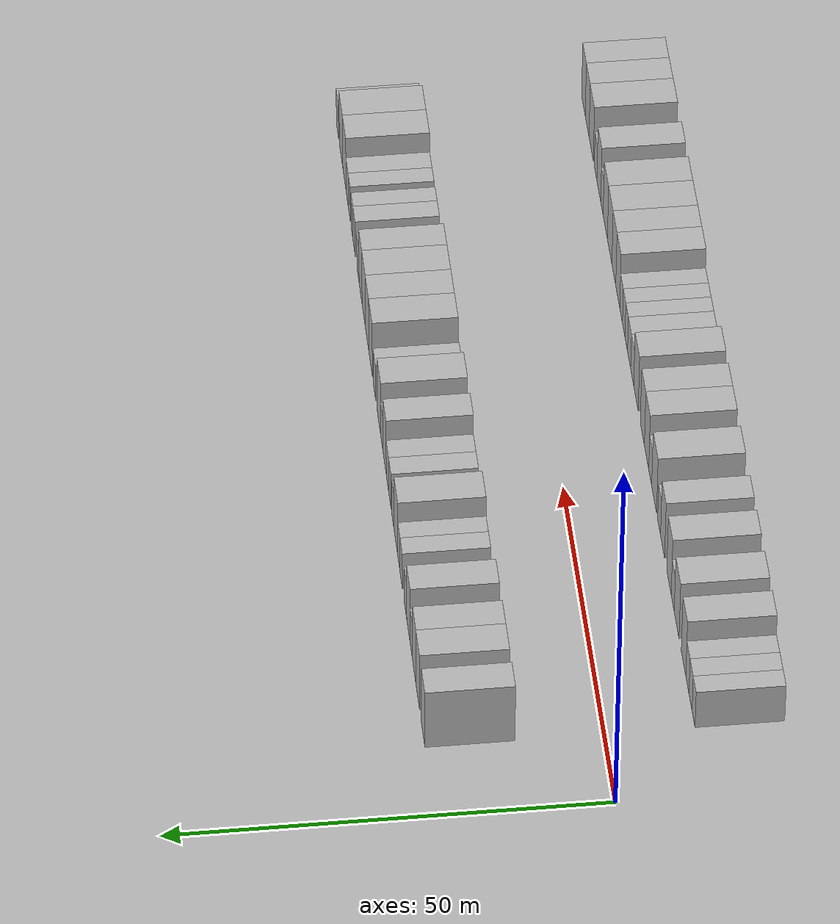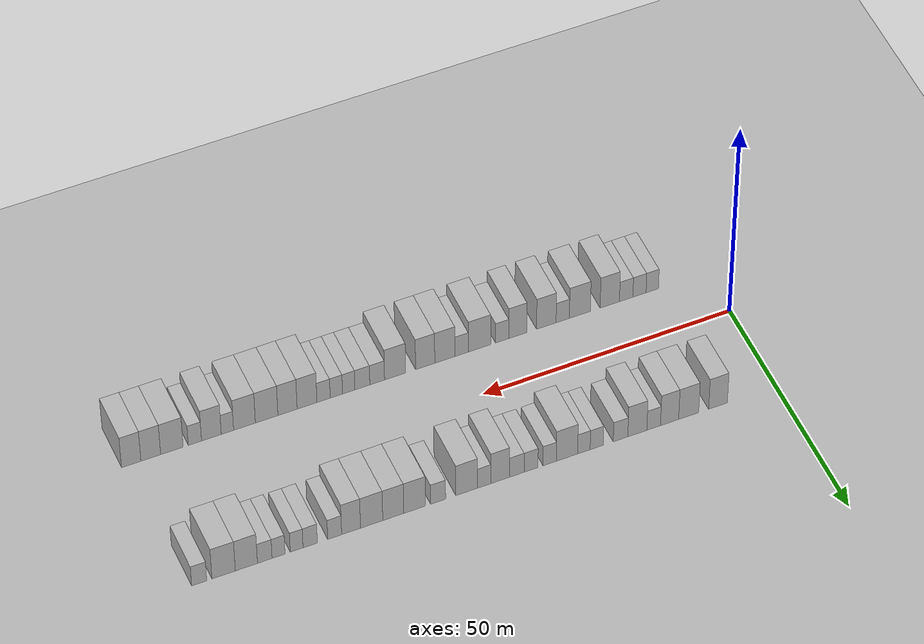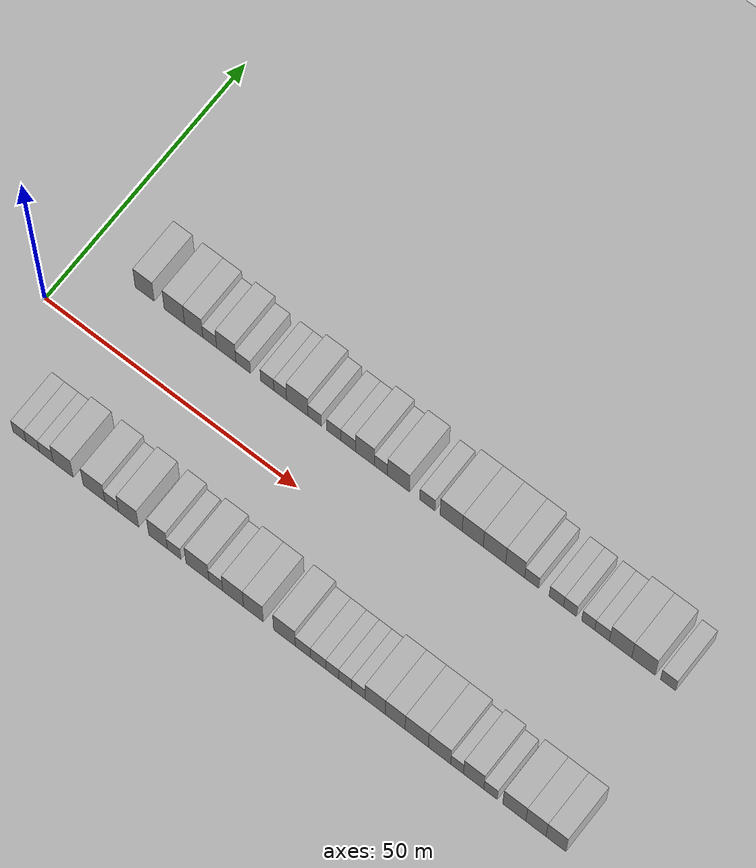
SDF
<sdf version="1.6">
 <world name="default">
  <include><name>ground_plane_1</name><uri>model://HANNAS_ground_plane</uri></include>
  <include>
   <name>ground_plane_2</name>
   <uri>model://HANNAS_ground_plane</uri>
   <pose>100 0 0  0 0 0</pose>
  </include>
  <model name="building_1">
   <static>1</static>
   <pose>11.8929 15.0000 0 0.000000 0.000000 1.570796</pose>
   <link name="link">
    <pose>0 0 4.50 0 0 0</pose>
    <collision name="collision"><geometry><box><size>10.0000 3.7858 9.0000</size></box></geometry></collision>
    <visual name="visual">
     <cast_shadows>0</cast_shadows>
     <geometry><box><size>10.0000 3.7858 9.0000</size></box></geometry>
     <material>
      <script>
       <uri>model://HANNAS_wall/materials/scripts</uri>
       <uri>model://HANNAS_wall/materials/textures</uri>
       <name>vrc/HANNAS_wall</name>
      </script>
     </material>
    </visual>
   </link>
  </model>
  <model name="building_2">
   <static>1</static>
   <pose>17.8049 15.0000 0 0.000000 0.000000 1.570796</pose>
   <link name="link">
    <pose>0 0 4.50 0 0 0</pose>
    <collision name="collision"><geometry><box><size>10.0000 4.0382 9.0000</size></box></geometry></collision>
    <visual name="visual">
     <cast_shadows>0</cast_shadows>
     <geometry><box><size>10.0000 4.0382 9.0000</size></box></geometry>
     <material>
      <script>
       <uri>model://HANNAS_wall/materials/scripts</uri>
       <uri>model://HANNAS_wall/materials/textures</uri>
       <name>vrc/HANNAS_wall</name>
      </script>
     </material>
    </visual>
   </link>
  </model>
  <model name="building_3">
   <static>1</static>
   <pose>21.6515 15.0000 0 0.000000 0.000000 1.570796</pose>
   <link name="link">
    <pose>0 0 4.50 0 0 0</pose>
    <collision name="collision"><geometry><box><size>10.0000 3.6549 9.0000</size></box></geometry></collision>
    <visual name="visual">
     <cast_shadows>0</cast_shadows>
     <geometry><box><size>10.0000 3.6549 9.0000</size></box></geometry>
     <material>
      <script>
       <uri>model://HANNAS_wall/materials/scripts</uri>
       <uri>model://HANNAS_wall/materials/textures</uri>
       <name>vrc/HANNAS_wall</name>
      </script>
     </material>
    </visual>
   </link>
  </model>
  <model name="building_4">
   <static>1</static>
   <pose>24.8479 15.0000 0 0.000000 0.000000 1.570796</pose>
   <link name="link">
    <pose>0 0 3.00 0 0 0</pose>
    <collision name="collision"><geometry><box><size>10.0000 2.7379 6.0000</size></box></geometry></collision>
    <visual name="visual">
     <cast_shadows>0</cast_shadows>
     <geometry><box><size>10.0000 2.7379 6.0000</size></box></geometry>
     <material>
      <script>
       <uri>model://HANNAS_wall/materials/scripts</uri>
       <uri>model://HANNAS_wall/materials/textures</uri>
       <name>vrc/HANNAS_wall</name>
      </script>
     </material>
    </visual>
   </link>
  </model>
  <model name="building_5">
   <static>1</static>
   <pose>28.1217 15.0000 0 0.000000 0.000000 1.570796</pose>
   <link name="link">
    <pose>0 0 4.50 0 0 0</pose>
    <collision name="collision"><geometry><box><size>10.0000 3.8098 9.0000</size></box></geometry></collision>
    <visual name="visual">
     <cast_shadows>0</cast_shadows>
     <geometry><box><size>10.0000 3.8098 9.0000</size></box></geometry>
     <material>
      <script>
       <uri>model://HANNAS_wall/materials/scripts</uri>
       <uri>model://HANNAS_wall/materials/textures</uri>
       <name>vrc/HANNAS_wall</name>
      </script>
     </material>
    </visual>
   </link>
  </model>
  <model name="building_6">
   <static>1</static>
   <pose>31.4849 15.0000 0 0.000000 0.000000 1.570796</pose>
   <link name="link">
    <pose>0 0 3.00 0 0 0</pose>
    <collision name="collision"><geometry><box><size>10.0000 2.9166 6.0000</size></box></geometry></collision>
    <visual name="visual">
     <cast_shadows>0</cast_shadows>
     <geometry><box><size>10.0000 2.9166 6.0000</size></box></geometry>
     <material>
      <script>
       <uri>model://HANNAS_wall/materials/scripts</uri>
       <uri>model://HANNAS_wall/materials/textures</uri>
       <name>vrc/HANNAS_wall</name>
      </script>
     </material>
    </visual>
   </link>
  </model>
  <model name="building_7">
   <static>1</static>
   <pose>36.2474 15.0000 0 0.000000 0.000000 1.570796</pose>
   <link name="link">
    <pose>0 0 3.00 0 0 0</pose>
    <collision name="collision"><geometry><box><size>10.0000 2.6083 6.0000</size></box></geometry></collision>
    <visual name="visual">
     <cast_shadows>0</cast_shadows>
     <geometry><box><size>10.0000 2.6083 6.0000</size></box></geometry>
     <material>
      <script>
       <uri>model://HANNAS_wall/materials/scripts</uri>
       <uri>model://HANNAS_wall/materials/textures</uri>
       <name>vrc/HANNAS_wall</name>
      </script>
     </material>
    </visual>
   </link>
  </model>
  <model name="building_8">
   <static>1</static>
   <pose>38.7990 15.0000 0 0.000000 0.000000 1.570796</pose>
   <link name="link">
    <pose>0 0 3.00 0 0 0</pose>
    <collision name="collision"><geometry><box><size>10.0000 2.4950 6.0000</size></box></geometry></collision>
    <visual name="visual">
     <cast_shadows>0</cast_shadows>
     <geometry><box><size>10.0000 2.4950 6.0000</size></box></geometry>
     <material>
      <script>
       <uri>model://HANNAS_wall/materials/scripts</uri>
       <uri>model://HANNAS_wall/materials/textures</uri>
       <name>vrc/HANNAS_wall</name>
      </script>
     </material>
    </visual>
   </link>
  </model>
  <model name="building_9">
   <static>1</static>
   <pose>42.1642 15.0000 0 0.000000 0.000000 1.570796</pose>
   <link name="link">
    <pose>0 0 4.50 0 0 0</pose>
    <collision name="collision"><geometry><box><size>10.0000 4.2353 9.0000</size></box></geometry></collision>
    <visual name="visual">
     <cast_shadows>0</cast_shadows>
     <geometry><box><size>10.0000 4.2353 9.0000</size></box></geometry>
     <material>
      <script>
       <uri>model://HANNAS_wall/materials/scripts</uri>
       <uri>model://HANNAS_wall/materials/textures</uri>
       <name>vrc/HANNAS_wall</name>
      </script>
     </material>
    </visual>
   </link>
  </model>
  <model name="building_10">
   <static>1</static>
   <pose>45.5942 15.0000 0 0.000000 0.000000 1.570796</pose>
   <link name="link">
    <pose>0 0 3.00 0 0 0</pose>
    <collision name="collision"><geometry><box><size>10.0000 2.6246 6.0000</size></box></geometry></collision>
    <visual name="visual">
     <cast_shadows>0</cast_shadows>
     <geometry><box><size>10.0000 2.6246 6.0000</size></box></geometry>
     <material>
      <script>
       <uri>model://HANNAS_wall/materials/scripts</uri>
       <uri>model://HANNAS_wall/materials/textures</uri>
       <name>vrc/HANNAS_wall</name>
      </script>
     </material>
    </visual>
   </link>
  </model>
  <model name="building_11">
   <static>1</static>
   <pose>49.2856 15.0000 0 0.000000 0.000000 1.570796</pose>
   <link name="link">
    <pose>0 0 3.00 0 0 0</pose>
    <collision name="collision"><geometry><box><size>10.0000 2.7582 6.0000</size></box></geometry></collision>
    <visual name="visual">
     <cast_shadows>0</cast_shadows>
     <geometry><box><size>10.0000 2.7582 6.0000</size></box></geometry>
     <material>
      <script>
       <uri>model://HANNAS_wall/materials/scripts</uri>
       <uri>model://HANNAS_wall/materials/textures</uri>
       <name>vrc/HANNAS_wall</name>
      </script>
     </material>
    </visual>
   </link>
  </model>
  <model name="building_12">
   <static>1</static>
   <pose>52.1100 15.0000 0 0.000000 0.000000 1.570796</pose>
   <link name="link">
    <pose>0 0 3.00 0 0 0</pose>
    <collision name="collision"><geometry><box><size>10.0000 2.8906 6.0000</size></box></geometry></collision>
    <visual name="visual">
     <cast_shadows>0</cast_shadows>
     <geometry><box><size>10.0000 2.8906 6.0000</size></box></geometry>
     <material>
      <script>
       <uri>model://HANNAS_wall/materials/scripts</uri>
       <uri>model://HANNAS_wall/materials/textures</uri>
       <name>vrc/HANNAS_wall</name>
      </script>
     </material>
    </visual>
   </link>
  </model>
  <model name="building_13">
   <static>1</static>
   <pose>55.3930 15.0000 0 0.000000 0.000000 1.570796</pose>
   <link name="link">
    <pose>0 0 4.50 0 0 0</pose>
    <collision name="collision"><geometry><box><size>10.0000 3.6754 9.0000</size></box></geometry></collision>
    <visual name="visual">
     <cast_shadows>0</cast_shadows>
     <geometry><box><size>10.0000 3.6754 9.0000</size></box></geometry>
     <material>
      <script>
       <uri>model://HANNAS_wall/materials/scripts</uri>
       <uri>model://HANNAS_wall/materials/textures</uri>
       <name>vrc/HANNAS_wall</name>
      </script>
     </material>
    </visual>
   </link>
  </model>
  <model name="building_14">
   <static>1</static>
   <pose>58.5261 15.0000 0 0.000000 0.000000 1.570796</pose>
   <link name="link">
    <pose>0 0 3.00 0 0 0</pose>
    <collision name="collision"><geometry><box><size>10.0000 2.5907 6.0000</size></box></geometry></collision>
    <visual name="visual">
     <cast_shadows>0</cast_shadows>
     <geometry><box><size>10.0000 2.5907 6.0000</size></box></geometry>
     <material>
      <script>
       <uri>model://HANNAS_wall/materials/scripts</uri>
       <uri>model://HANNAS_wall/materials/textures</uri>
       <name>vrc/HANNAS_wall</name>
      </script>
     </material>
    </visual>
   </link>
  </model>
  <model name="building_15">
   <static>1</static>
   <pose>61.9586 15.0000 0 0.000000 0.000000 1.570796</pose>
   <link name="link">
    <pose>0 0 4.50 0 0 0</pose>
    <collision name="collision"><geometry><box><size>10.0000 4.2743 9.0000</size></box></geometry></collision>
    <visual name="visual">
     <cast_shadows>0</cast_shadows>
     <geometry><box><size>10.0000 4.2743 9.0000</size></box></geometry>
     <material>
      <script>
       <uri>model://HANNAS_wall/materials/scripts</uri>
       <uri>model://HANNAS_wall/materials/textures</uri>
       <name>vrc/HANNAS_wall</name>
      </script>
     </material>
    </visual>
   </link>
  </model>
  <model name="building_16">
   <static>1</static>
   <pose>67.5667 15.0000 0 0.000000 0.000000 1.570796</pose>
   <link name="link">
    <pose>0 0 3.00 0 0 0</pose>
    <collision name="collision"><geometry><box><size>10.0000 2.9419 6.0000</size></box></geometry></collision>
    <visual name="visual">
     <cast_shadows>0</cast_shadows>
     <geometry><box><size>10.0000 2.9419 6.0000</size></box></geometry>
     <material>
      <script>
       <uri>model://HANNAS_wall/materials/scripts</uri>
       <uri>model://HANNAS_wall/materials/textures</uri>
       <name>vrc/HANNAS_wall</name>
      </script>
     </material>
    </visual>
   </link>
  </model>
  <model name="building_17">
   <static>1</static>
   <pose>72.1605 15.0000 0 0.000000 0.000000 1.570796</pose>
   <link name="link">
    <pose>0 0 4.50 0 0 0</pose>
    <collision name="collision"><geometry><box><size>10.0000 4.2457 9.0000</size></box></geometry></collision>
    <visual name="visual">
     <cast_shadows>0</cast_shadows>
     <geometry><box><size>10.0000 4.2457 9.0000</size></box></geometry>
     <material>
      <script>
       <uri>model://HANNAS_wall/materials/scripts</uri>
       <uri>model://HANNAS_wall/materials/textures</uri>
       <name>vrc/HANNAS_wall</name>
      </script>
     </material>
    </visual>
   </link>
  </model>
  <model name="building_18">
   <static>1</static>
   <pose>76.3221 15.0000 0 0.000000 0.000000 1.570796</pose>
   <link name="link">
    <pose>0 0 4.50 0 0 0</pose>
    <collision name="collision"><geometry><box><size>10.0000 4.0774 9.0000</size></box></geometry></collision>
    <visual name="visual">
     <cast_shadows>0</cast_shadows>
     <geometry><box><size>10.0000 4.0774 9.0000</size></box></geometry>
     <material>
      <script>
       <uri>model://HANNAS_wall/materials/scripts</uri>
       <uri>model://HANNAS_wall/materials/textures</uri>
       <name>vrc/HANNAS_wall</name>
      </script>
     </material>
    </visual>
   </link>
  </model>
  <model name="building_19">
   <static>1</static>
   <pose>80.5234 15.0000 0 0.000000 0.000000 1.570796</pose>
   <link name="link">
    <pose>0 0 4.50 0 0 0</pose>
    <collision name="collision"><geometry><box><size>10.0000 4.3253 9.0000</size></box></geometry></collision>
    <visual name="visual">
     <cast_shadows>0</cast_shadows>
     <geometry><box><size>10.0000 4.3253 9.0000</size></box></geometry>
     <material>
      <script>
       <uri>model://HANNAS_wall/materials/scripts</uri>
       <uri>model://HANNAS_wall/materials/textures</uri>
       <name>vrc/HANNAS_wall</name>
      </script>
     </material>
    </visual>
   </link>
  </model>
  <model name="building_20">
   <static>1</static>
   <pose>84.5161 15.0000 0 0.000000 0.000000 1.570796</pose>
   <link name="link">
    <pose>0 0 4.50 0 0 0</pose>
    <collision name="collision"><geometry><box><size>10.0000 3.6600 9.0000</size></box></geometry></collision>
    <visual name="visual">
     <cast_shadows>0</cast_shadows>
     <geometry><box><size>10.0000 3.6600 9.0000</size></box></geometry>
     <material>
      <script>
       <uri>model://HANNAS_wall/materials/scripts</uri>
       <uri>model://HANNAS_wall/materials/textures</uri>
       <name>vrc/HANNAS_wall</name>
      </script>
     </material>
    </visual>
   </link>
  </model>
  <model name="building_21">
   <static>1</static>
   <pose>87.6903 15.0000 0 0.000000 0.000000 1.570796</pose>
   <link name="link">
    <pose>0 0 3.00 0 0 0</pose>
    <collision name="collision"><geometry><box><size>10.0000 2.6885 6.0000</size></box></geometry></collision>
    <visual name="visual">
     <cast_shadows>0</cast_shadows>
     <geometry><box><size>10.0000 2.6885 6.0000</size></box></geometry>
     <material>
      <script>
       <uri>model://HANNAS_wall/materials/scripts</uri>
       <uri>model://HANNAS_wall/materials/textures</uri>
       <name>vrc/HANNAS_wall</name>
      </script>
     </material>
    </visual>
   </link>
  </model>
  <model name="building_22">
   <static>1</static>
   <pose>92.4171 15.0000 0 0.000000 0.000000 1.570796</pose>
   <link name="link">
    <pose>0 0 3.00 0 0 0</pose>
    <collision name="collision"><geometry><box><size>10.0000 2.7649 6.0000</size></box></geometry></collision>
    <visual name="visual">
     <cast_shadows>0</cast_shadows>
     <geometry><box><size>10.0000 2.7649 6.0000</size></box></geometry>
     <material>
      <script>
       <uri>model://HANNAS_wall/materials/scripts</uri>
       <uri>model://HANNAS_wall/materials/textures</uri>
       <name>vrc/HANNAS_wall</name>
      </script>
     </material>
    </visual>
   </link>
  </model>
  <model name="building_23">
   <static>1</static>
   <pose>95.0302 15.0000 0 0.000000 0.000000 1.570796</pose>
   <link name="link">
    <pose>0 0 3.00 0 0 0</pose>
    <collision name="collision"><geometry><box><size>10.0000 2.4614 6.0000</size></box></geometry></collision>
    <visual name="visual">
     <cast_shadows>0</cast_shadows>
     <geometry><box><size>10.0000 2.4614 6.0000</size></box></geometry>
     <material>
      <script>
       <uri>model://HANNAS_wall/materials/scripts</uri>
       <uri>model://HANNAS_wall/materials/textures</uri>
       <name>vrc/HANNAS_wall</name>
      </script>
     </material>
    </visual>
   </link>
  </model>
  <model name="building_24">
   <static>1</static>
   <pose>98.5067 15.0000 0 0.000000 0.000000 1.570796</pose>
   <link name="link">
    <pose>0 0 3.00 0 0 0</pose>
    <collision name="collision"><geometry><box><size>10.0000 2.4915 6.0000</size></box></geometry></collision>
    <visual name="visual">
     <cast_shadows>0</cast_shadows>
     <geometry><box><size>10.0000 2.4915 6.0000</size></box></geometry>
     <material>
      <script>
       <uri>model://HANNAS_wall/materials/scripts</uri>
       <uri>model://HANNAS_wall/materials/textures</uri>
       <name>vrc/HANNAS_wall</name>
      </script>
     </material>
    </visual>
   </link>
  </model>
  <model name="building_25">
   <static>1</static>
   <pose>101.1531 15.0000 0 0.000000 0.000000 1.570796</pose>
   <link name="link">
    <pose>0 0 3.00 0 0 0</pose>
    <collision name="collision"><geometry><box><size>10.0000 2.8013 6.0000</size></box></geometry></collision>
    <visual name="visual">
     <cast_shadows>0</cast_shadows>
     <geometry><box><size>10.0000 2.8013 6.0000</size></box></geometry>
     <material>
      <script>
       <uri>model://HANNAS_wall/materials/scripts</uri>
       <uri>model://HANNAS_wall/materials/textures</uri>
       <name>vrc/HANNAS_wall</name>
      </script>
     </material>
    </visual>
   </link>
  </model>
  <model name="building_26">
   <static>1</static>
   <pose>104.6745 15.0000 0 0.000000 0.000000 1.570796</pose>
   <link name="link">
    <pose>0 0 4.50 0 0 0</pose>
    <collision name="collision"><geometry><box><size>10.0000 4.2414 9.0000</size></box></geometry></collision>
    <visual name="visual">
     <cast_shadows>0</cast_shadows>
     <geometry><box><size>10.0000 4.2414 9.0000</size></box></geometry>
     <material>
      <script>
       <uri>model://HANNAS_wall/materials/scripts</uri>
       <uri>model://HANNAS_wall/materials/textures</uri>
       <name>vrc/HANNAS_wall</name>
      </script>
     </material>
    </visual>
   </link>
  </model>
  <model name="building_27">
   <static>1</static>
   <pose>109.0264 15.0000 0 0.000000 0.000000 1.570796</pose>
   <link name="link">
    <pose>0 0 4.50 0 0 0</pose>
    <collision name="collision"><geometry><box><size>10.0000 4.4623 9.0000</size></box></geometry></collision>
    <visual name="visual">
     <cast_shadows>0</cast_shadows>
     <geometry><box><size>10.0000 4.4623 9.0000</size></box></geometry>
     <material>
      <script>
       <uri>model://HANNAS_wall/materials/scripts</uri>
       <uri>model://HANNAS_wall/materials/textures</uri>
       <name>vrc/HANNAS_wall</name>
      </script>
     </material>
    </visual>
   </link>
  </model>
  <model name="building_28">
   <static>1</static>
   <pose>113.6944 15.0000 0 0.000000 0.000000 1.570796</pose>
   <link name="link">
    <pose>0 0 3.00 0 0 0</pose>
    <collision name="collision"><geometry><box><size>10.0000 2.8739 6.0000</size></box></geometry></collision>
    <visual name="visual">
     <cast_shadows>0</cast_shadows>
     <geometry><box><size>10.0000 2.8739 6.0000</size></box></geometry>
     <material>
      <script>
       <uri>model://HANNAS_wall/materials/scripts</uri>
       <uri>model://HANNAS_wall/materials/textures</uri>
       <name>vrc/HANNAS_wall</name>
      </script>
     </material>
    </visual>
   </link>
  </model>
  <model name="building_57">
   <static>1</static>
   <pose>11.2732 -15.0000 0 0.000000 0.000000 1.570796</pose>
   <link name="link">
    <pose>0 0 3.00 0 0 0</pose>
    <collision name="collision"><geometry><box><size>10.0000 2.5463 6.0000</size></box></geometry></collision>
    <visual name="visual">
     <cast_shadows>0</cast_shadows>
     <geometry><box><size>10.0000 2.5463 6.0000</size></box></geometry>
     <material>
      <script>
       <uri>model://HANNAS_wall/materials/scripts</uri>
       <uri>model://HANNAS_wall/materials/textures</uri>
       <name>vrc/HANNAS_wall</name>
      </script>
     </material>
    </visual>
   </link>
  </model>
  <model name="building_58">
   <static>1</static>
   <pose>13.8984 -15.0000 0 0.000000 0.000000 1.570796</pose>
   <link name="link">
    <pose>0 0 3.00 0 0 0</pose>
    <collision name="collision"><geometry><box><size>10.0000 2.7041 6.0000</size></box></geometry></collision>
    <visual name="visual">
     <cast_shadows>0</cast_shadows>
     <geometry><box><size>10.0000 2.7041 6.0000</size></box></geometry>
     <material>
      <script>
       <uri>model://HANNAS_wall/materials/scripts</uri>
       <uri>model://HANNAS_wall/materials/textures</uri>
       <name>vrc/HANNAS_wall</name>
      </script>
     </material>
    </visual>
   </link>
  </model>
  <model name="building_59">
   <static>1</static>
   <pose>16.6258 -15.0000 0 0.000000 0.000000 1.570796</pose>
   <link name="link">
    <pose>0 0 3.00 0 0 0</pose>
    <collision name="collision"><geometry><box><size>10.0000 2.7507 6.0000</size></box></geometry></collision>
    <visual name="visual">
     <cast_shadows>0</cast_shadows>
     <geometry><box><size>10.0000 2.7507 6.0000</size></box></geometry>
     <material>
      <script>
       <uri>model://HANNAS_wall/materials/scripts</uri>
       <uri>model://HANNAS_wall/materials/textures</uri>
       <name>vrc/HANNAS_wall</name>
      </script>
     </material>
    </visual>
   </link>
  </model>
  <model name="building_60">
   <static>1</static>
   <pose>19.9818 -15.0000 0 0.000000 0.000000 1.570796</pose>
   <link name="link">
    <pose>0 0 4.50 0 0 0</pose>
    <collision name="collision"><geometry><box><size>10.0000 3.9614 9.0000</size></box></geometry></collision>
    <visual name="visual">
     <cast_shadows>0</cast_shadows>
     <geometry><box><size>10.0000 3.9614 9.0000</size></box></geometry>
     <material>
      <script>
       <uri>model://HANNAS_wall/materials/scripts</uri>
       <uri>model://HANNAS_wall/materials/textures</uri>
       <name>vrc/HANNAS_wall</name>
      </script>
     </material>
    </visual>
   </link>
  </model>
  <model name="building_61">
   <static>1</static>
   <pose>26.1004 -15.0000 0 0.000000 0.000000 1.570796</pose>
   <link name="link">
    <pose>0 0 4.50 0 0 0</pose>
    <collision name="collision"><geometry><box><size>10.0000 4.2758 9.0000</size></box></geometry></collision>
    <visual name="visual">
     <cast_shadows>0</cast_shadows>
     <geometry><box><size>10.0000 4.2758 9.0000</size></box></geometry>
     <material>
      <script>
       <uri>model://HANNAS_wall/materials/scripts</uri>
       <uri>model://HANNAS_wall/materials/textures</uri>
       <name>vrc/HANNAS_wall</name>
      </script>
     </material>
    </visual>
   </link>
  </model>
  <model name="building_62">
   <static>1</static>
   <pose>29.5896 -15.0000 0 0.000000 0.000000 1.570796</pose>
   <link name="link">
    <pose>0 0 3.00 0 0 0</pose>
    <collision name="collision"><geometry><box><size>10.0000 2.7027 6.0000</size></box></geometry></collision>
    <visual name="visual">
     <cast_shadows>0</cast_shadows>
     <geometry><box><size>10.0000 2.7027 6.0000</size></box></geometry>
     <material>
      <script>
       <uri>model://HANNAS_wall/materials/scripts</uri>
       <uri>model://HANNAS_wall/materials/textures</uri>
       <name>vrc/HANNAS_wall</name>
      </script>
     </material>
    </visual>
   </link>
  </model>
  <model name="building_63">
   <static>1</static>
   <pose>32.9135 -15.0000 0 0.000000 0.000000 1.570796</pose>
   <link name="link">
    <pose>0 0 4.50 0 0 0</pose>
    <collision name="collision"><geometry><box><size>10.0000 3.9450 9.0000</size></box></geometry></collision>
    <visual name="visual">
     <cast_shadows>0</cast_shadows>
     <geometry><box><size>10.0000 3.9450 9.0000</size></box></geometry>
     <material>
      <script>
       <uri>model://HANNAS_wall/materials/scripts</uri>
       <uri>model://HANNAS_wall/materials/textures</uri>
       <name>vrc/HANNAS_wall</name>
      </script>
     </material>
    </visual>
   </link>
  </model>
  <model name="building_64">
   <static>1</static>
   <pose>38.7111 -15.0000 0 0.000000 0.000000 1.570796</pose>
   <link name="link">
    <pose>0 0 4.50 0 0 0</pose>
    <collision name="collision"><geometry><box><size>10.0000 3.6503 9.0000</size></box></geometry></collision>
    <visual name="visual">
     <cast_shadows>0</cast_shadows>
     <geometry><box><size>10.0000 3.6503 9.0000</size></box></geometry>
     <material>
      <script>
       <uri>model://HANNAS_wall/materials/scripts</uri>
       <uri>model://HANNAS_wall/materials/textures</uri>
       <name>vrc/HANNAS_wall</name>
      </script>
     </material>
    </visual>
   </link>
  </model>
  <model name="building_65">
   <static>1</static>
   <pose>41.8596 -15.0000 0 0.000000 0.000000 1.570796</pose>
   <link name="link">
    <pose>0 0 3.00 0 0 0</pose>
    <collision name="collision"><geometry><box><size>10.0000 2.6468 6.0000</size></box></geometry></collision>
    <visual name="visual">
     <cast_shadows>0</cast_shadows>
     <geometry><box><size>10.0000 2.6468 6.0000</size></box></geometry>
     <material>
      <script>
       <uri>model://HANNAS_wall/materials/scripts</uri>
       <uri>model://HANNAS_wall/materials/textures</uri>
       <name>vrc/HANNAS_wall</name>
      </script>
     </material>
    </visual>
   </link>
  </model>
  <model name="building_66">
   <static>1</static>
   <pose>46.4245 -15.0000 0 0.000000 0.000000 1.570796</pose>
   <link name="link">
    <pose>0 0 4.50 0 0 0</pose>
    <collision name="collision"><geometry><box><size>10.0000 4.4829 9.0000</size></box></geometry></collision>
    <visual name="visual">
     <cast_shadows>0</cast_shadows>
     <geometry><box><size>10.0000 4.4829 9.0000</size></box></geometry>
     <material>
      <script>
       <uri>model://HANNAS_wall/materials/scripts</uri>
       <uri>model://HANNAS_wall/materials/textures</uri>
       <name>vrc/HANNAS_wall</name>
      </script>
     </material>
    </visual>
   </link>
  </model>
  <model name="building_67">
   <static>1</static>
   <pose>50.0160 -15.0000 0 0.000000 0.000000 1.570796</pose>
   <link name="link">
    <pose>0 0 3.00 0 0 0</pose>
    <collision name="collision"><geometry><box><size>10.0000 2.7002 6.0000</size></box></geometry></collision>
    <visual name="visual">
     <cast_shadows>0</cast_shadows>
     <geometry><box><size>10.0000 2.7002 6.0000</size></box></geometry>
     <material>
      <script>
       <uri>model://HANNAS_wall/materials/scripts</uri>
       <uri>model://HANNAS_wall/materials/textures</uri>
       <name>vrc/HANNAS_wall</name>
      </script>
     </material>
    </visual>
   </link>
  </model>
  <model name="building_68">
   <static>1</static>
   <pose>53.3879 -15.0000 0 0.000000 0.000000 1.570796</pose>
   <link name="link">
    <pose>0 0 4.50 0 0 0</pose>
    <collision name="collision"><geometry><box><size>10.0000 4.0436 9.0000</size></box></geometry></collision>
    <visual name="visual">
     <cast_shadows>0</cast_shadows>
     <geometry><box><size>10.0000 4.0436 9.0000</size></box></geometry>
     <material>
      <script>
       <uri>model://HANNAS_wall/materials/scripts</uri>
       <uri>model://HANNAS_wall/materials/textures</uri>
       <name>vrc/HANNAS_wall</name>
      </script>
     </material>
    </visual>
   </link>
  </model>
  <model name="building_69">
   <static>1</static>
   <pose>57.3271 -15.0000 0 0.000000 0.000000 1.570796</pose>
   <link name="link">
    <pose>0 0 4.50 0 0 0</pose>
    <collision name="collision"><geometry><box><size>10.0000 3.8349 9.0000</size></box></geometry></collision>
    <visual name="visual">
     <cast_shadows>0</cast_shadows>
     <geometry><box><size>10.0000 3.8349 9.0000</size></box></geometry>
     <material>
      <script>
       <uri>model://HANNAS_wall/materials/scripts</uri>
       <uri>model://HANNAS_wall/materials/textures</uri>
       <name>vrc/HANNAS_wall</name>
      </script>
     </material>
    </visual>
   </link>
  </model>
  <model name="building_70">
   <static>1</static>
   <pose>63.3466 -15.0000 0 0.000000 0.000000 1.570796</pose>
   <link name="link">
    <pose>0 0 4.50 0 0 0</pose>
    <collision name="collision"><geometry><box><size>10.0000 4.2040 9.0000</size></box></geometry></collision>
    <visual name="visual">
     <cast_shadows>0</cast_shadows>
     <geometry><box><size>10.0000 4.2040 9.0000</size></box></geometry>
     <material>
      <script>
       <uri>model://HANNAS_wall/materials/scripts</uri>
       <uri>model://HANNAS_wall/materials/textures</uri>
       <name>vrc/HANNAS_wall</name>
      </script>
     </material>
    </visual>
   </link>
  </model>
  <model name="building_71">
   <static>1</static>
   <pose>66.9137 -15.0000 0 0.000000 0.000000 1.570796</pose>
   <link name="link">
    <pose>0 0 3.00 0 0 0</pose>
    <collision name="collision"><geometry><box><size>10.0000 2.9303 6.0000</size></box></geometry></collision>
    <visual name="visual">
     <cast_shadows>0</cast_shadows>
     <geometry><box><size>10.0000 2.9303 6.0000</size></box></geometry>
     <material>
      <script>
       <uri>model://HANNAS_wall/materials/scripts</uri>
       <uri>model://HANNAS_wall/materials/textures</uri>
       <name>vrc/HANNAS_wall</name>
      </script>
     </material>
    </visual>
   </link>
  </model>
  <model name="building_72">
   <static>1</static>
   <pose>69.8640 -15.0000 0 0.000000 0.000000 1.570796</pose>
   <link name="link">
    <pose>0 0 3.00 0 0 0</pose>
    <collision name="collision"><geometry><box><size>10.0000 2.9703 6.0000</size></box></geometry></collision>
    <visual name="visual">
     <cast_shadows>0</cast_shadows>
     <geometry><box><size>10.0000 2.9703 6.0000</size></box></geometry>
     <material>
      <script>
       <uri>model://HANNAS_wall/materials/scripts</uri>
       <uri>model://HANNAS_wall/materials/textures</uri>
       <name>vrc/HANNAS_wall</name>
      </script>
     </material>
    </visual>
   </link>
  </model>
  <model name="building_73">
   <static>1</static>
   <pose>72.5746 -15.0000 0 0.000000 0.000000 1.570796</pose>
   <link name="link">
    <pose>0 0 3.00 0 0 0</pose>
    <collision name="collision"><geometry><box><size>10.0000 2.4508 6.0000</size></box></geometry></collision>
    <visual name="visual">
     <cast_shadows>0</cast_shadows>
     <geometry><box><size>10.0000 2.4508 6.0000</size></box></geometry>
     <material>
      <script>
       <uri>model://HANNAS_wall/materials/scripts</uri>
       <uri>model://HANNAS_wall/materials/textures</uri>
       <name>vrc/HANNAS_wall</name>
      </script>
     </material>
    </visual>
   </link>
  </model>
  <model name="building_74">
   <static>1</static>
   <pose>75.0219 -15.0000 0 0.000000 0.000000 1.570796</pose>
   <link name="link">
    <pose>0 0 3.00 0 0 0</pose>
    <collision name="collision"><geometry><box><size>10.0000 2.4439 6.0000</size></box></geometry></collision>
    <visual name="visual">
     <cast_shadows>0</cast_shadows>
     <geometry><box><size>10.0000 2.4439 6.0000</size></box></geometry>
     <material>
      <script>
       <uri>model://HANNAS_wall/materials/scripts</uri>
       <uri>model://HANNAS_wall/materials/textures</uri>
       <name>vrc/HANNAS_wall</name>
      </script>
     </material>
    </visual>
   </link>
  </model>
  <model name="building_75">
   <static>1</static>
   <pose>77.5524 -15.0000 0 0.000000 0.000000 1.570796</pose>
   <link name="link">
    <pose>0 0 3.00 0 0 0</pose>
    <collision name="collision"><geometry><box><size>10.0000 2.6172 6.0000</size></box></geometry></collision>
    <visual name="visual">
     <cast_shadows>0</cast_shadows>
     <geometry><box><size>10.0000 2.6172 6.0000</size></box></geometry>
     <material>
      <script>
       <uri>model://HANNAS_wall/materials/scripts</uri>
       <uri>model://HANNAS_wall/materials/textures</uri>
       <name>vrc/HANNAS_wall</name>
      </script>
     </material>
    </visual>
   </link>
  </model>
  <model name="building_76">
   <static>1</static>
   <pose>80.8176 -15.0000 0 0.000000 0.000000 1.570796</pose>
   <link name="link">
    <pose>0 0 4.50 0 0 0</pose>
    <collision name="collision"><geometry><box><size>10.0000 3.9131 9.0000</size></box></geometry></collision>
    <visual name="visual">
     <cast_shadows>0</cast_shadows>
     <geometry><box><size>10.0000 3.9131 9.0000</size></box></geometry>
     <material>
      <script>
       <uri>model://HANNAS_wall/materials/scripts</uri>
       <uri>model://HANNAS_wall/materials/textures</uri>
       <name>vrc/HANNAS_wall</name>
      </script>
     </material>
    </visual>
   </link>
  </model>
  <model name="building_77">
   <static>1</static>
   <pose>84.6668 -15.0000 0 0.000000 0.000000 1.570796</pose>
   <link name="link">
    <pose>0 0 4.50 0 0 0</pose>
    <collision name="collision"><geometry><box><size>10.0000 3.7854 9.0000</size></box></geometry></collision>
    <visual name="visual">
     <cast_shadows>0</cast_shadows>
     <geometry><box><size>10.0000 3.7854 9.0000</size></box></geometry>
     <material>
      <script>
       <uri>model://HANNAS_wall/materials/scripts</uri>
       <uri>model://HANNAS_wall/materials/textures</uri>
       <name>vrc/HANNAS_wall</name>
      </script>
     </material>
    </visual>
   </link>
  </model>
  <model name="building_78">
   <static>1</static>
   <pose>88.7731 -15.0000 0 0.000000 0.000000 1.570796</pose>
   <link name="link">
    <pose>0 0 4.50 0 0 0</pose>
    <collision name="collision"><geometry><box><size>10.0000 4.4270 9.0000</size></box></geometry></collision>
    <visual name="visual">
     <cast_shadows>0</cast_shadows>
     <geometry><box><size>10.0000 4.4270 9.0000</size></box></geometry>
     <material>
      <script>
       <uri>model://HANNAS_wall/materials/scripts</uri>
       <uri>model://HANNAS_wall/materials/textures</uri>
       <name>vrc/HANNAS_wall</name>
      </script>
     </material>
    </visual>
   </link>
  </model>
  <model name="building_79">
   <static>1</static>
   <pose>93.1212 -15.0000 0 0.000000 0.000000 1.570796</pose>
   <link name="link">
    <pose>0 0 4.50 0 0 0</pose>
    <collision name="collision"><geometry><box><size>10.0000 4.2693 9.0000</size></box></geometry></collision>
    <visual name="visual">
     <cast_shadows>0</cast_shadows>
     <geometry><box><size>10.0000 4.2693 9.0000</size></box></geometry>
     <material>
      <script>
       <uri>model://HANNAS_wall/materials/scripts</uri>
       <uri>model://HANNAS_wall/materials/textures</uri>
       <name>vrc/HANNAS_wall</name>
      </script>
     </material>
    </visual>
   </link>
  </model>
  <model name="building_80">
   <static>1</static>
   <pose>96.4669 -15.0000 0 0.000000 0.000000 1.570796</pose>
   <link name="link">
    <pose>0 0 3.00 0 0 0</pose>
    <collision name="collision"><geometry><box><size>10.0000 2.4221 6.0000</size></box></geometry></collision>
    <visual name="visual">
     <cast_shadows>0</cast_shadows>
     <geometry><box><size>10.0000 2.4221 6.0000</size></box></geometry>
     <material>
      <script>
       <uri>model://HANNAS_wall/materials/scripts</uri>
       <uri>model://HANNAS_wall/materials/textures</uri>
       <name>vrc/HANNAS_wall</name>
      </script>
     </material>
    </visual>
   </link>
  </model>
  <model name="building_81">
   <static>1</static>
   <pose>99.6035 -15.0000 0 0.000000 0.000000 1.570796</pose>
   <link name="link">
    <pose>0 0 4.50 0 0 0</pose>
    <collision name="collision"><geometry><box><size>10.0000 3.8511 9.0000</size></box></geometry></collision>
    <visual name="visual">
     <cast_shadows>0</cast_shadows>
     <geometry><box><size>10.0000 3.8511 9.0000</size></box></geometry>
     <material>
      <script>
       <uri>model://HANNAS_wall/materials/scripts</uri>
       <uri>model://HANNAS_wall/materials/textures</uri>
       <name>vrc/HANNAS_wall</name>
      </script>
     </material>
    </visual>
   </link>
  </model>
  <model name="building_82">
   <static>1</static>
   <pose>102.8183 -15.0000 0 0.000000 0.000000 1.570796</pose>
   <link name="link">
    <pose>0 0 3.00 0 0 0</pose>
    <collision name="collision"><geometry><box><size>10.0000 2.5785 6.0000</size></box></geometry></collision>
    <visual name="visual">
     <cast_shadows>0</cast_shadows>
     <geometry><box><size>10.0000 2.5785 6.0000</size></box></geometry>
     <material>
      <script>
       <uri>model://HANNAS_wall/materials/scripts</uri>
       <uri>model://HANNAS_wall/materials/textures</uri>
       <name>vrc/HANNAS_wall</name>
      </script>
     </material>
    </visual>
   </link>
  </model>
  <model name="building_83">
   <static>1</static>
   <pose>107.2950 -15.0000 0 0.000000 0.000000 1.570796</pose>
   <link name="link">
    <pose>0 0 4.50 0 0 0</pose>
    <collision name="collision"><geometry><box><size>10.0000 4.3750 9.0000</size></box></geometry></collision>
    <visual name="visual">
     <cast_shadows>0</cast_shadows>
     <geometry><box><size>10.0000 4.3750 9.0000</size></box></geometry>
     <material>
      <script>
       <uri>model://HANNAS_wall/materials/scripts</uri>
       <uri>model://HANNAS_wall/materials/textures</uri>
       <name>vrc/HANNAS_wall</name>
      </script>
     </material>
    </visual>
   </link>
  </model>
  <model name="building_84">
   <static>1</static>
   <pose>111.3980 -15.0000 0 0.000000 0.000000 1.570796</pose>
   <link name="link">
    <pose>0 0 4.50 0 0 0</pose>
    <collision name="collision"><geometry><box><size>10.0000 3.8309 9.0000</size></box></geometry></collision>
    <visual name="visual">
     <cast_shadows>0</cast_shadows>
     <geometry><box><size>10.0000 3.8309 9.0000</size></box></geometry>
     <material>
      <script>
       <uri>model://HANNAS_wall/materials/scripts</uri>
       <uri>model://HANNAS_wall/materials/textures</uri>
       <name>vrc/HANNAS_wall</name>
      </script>
     </material>
    </visual>
   </link>
  </model>
  <model name="building_85">
   <static>1</static>
   <pose>115.1878 -15.0000 0 0.000000 0.000000 1.570796</pose>
   <link name="link">
    <pose>0 0 4.50 0 0 0</pose>
    <collision name="collision"><geometry><box><size>10.0000 3.7488 9.0000</size></box></geometry></collision>
    <visual name="visual">
     <cast_shadows>0</cast_shadows>
     <geometry><box><size>10.0000 3.7488 9.0000</size></box></geometry>
     <material>
      <script>
       <uri>model://HANNAS_wall/materials/scripts</uri>
       <uri>model://HANNAS_wall/materials/textures</uri>
       <name>vrc/HANNAS_wall</name>
      </script>
     </material>
    </visual>
   </link>
  </model>
 </world>
</sdf>
